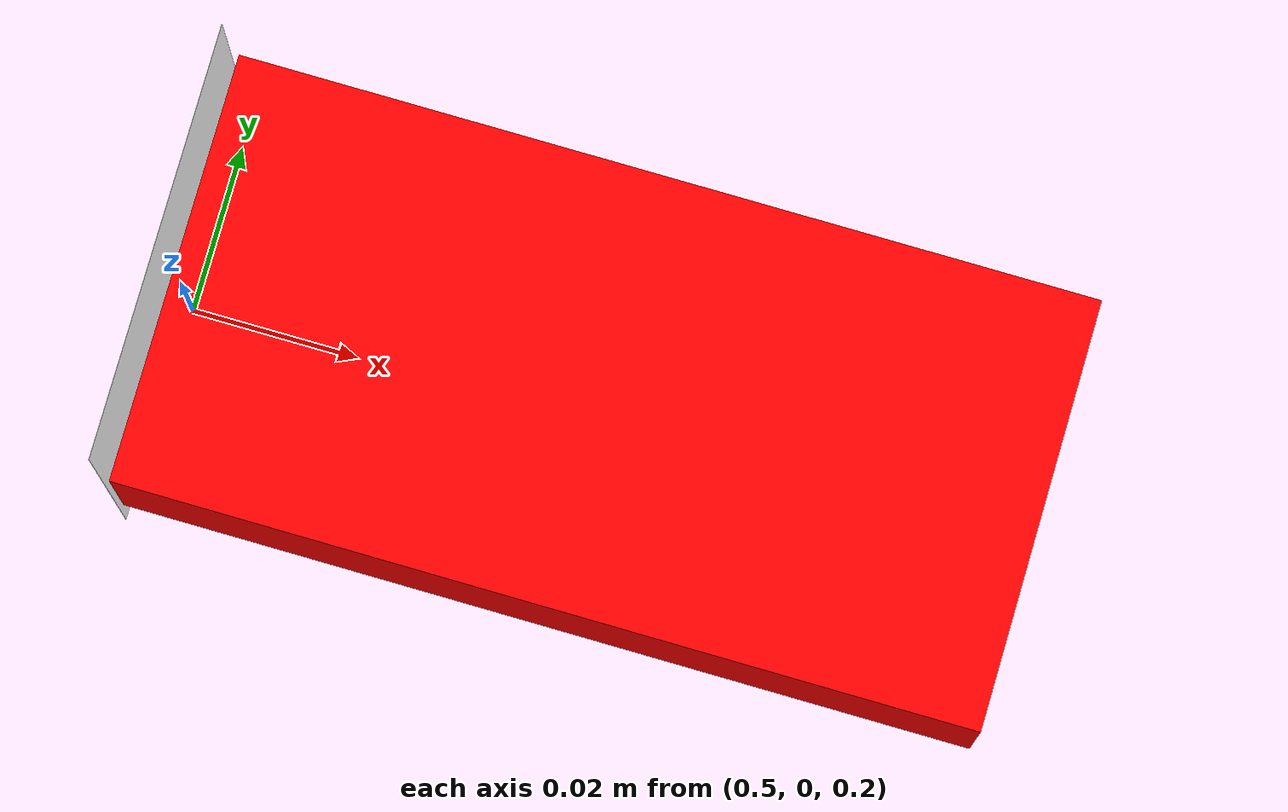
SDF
<?xml version="1.0"?>
<sdf version="1.8">
  <world name="battery_station">

    <plugin filename="ignition-gazebo-physics-system" name="ignition::gazebo::systems::Physics" />
    <plugin filename="ignition-gazebo-user-commands-system" name="ignition::gazebo::systems::UserCommands" />
    <plugin filename="ignition-gazebo-scene-broadcaster-system" name="ignition::gazebo::systems::SceneBroadcaster" />
    <plugin filename="ignition-gazebo-sensors-system" name="ignition::gazebo::systems::Sensors">
      <render_engine>ogre</render_engine>
    </plugin>

    <!-- Physics -->
    <physics name="physics" type="ode">
      <max_step_size>0.005</max_step_size>
      <real_time_factor>1.0</real_time_factor>
      <real_time_update_rate>200</real_time_update_rate>
    </physics>

    <!-- Scene -->
    <scene>
      <ambient>0.4 0.4 0.4 1</ambient>
      <background>0.7 0.7 0.7 1</background>
      <shadows>false</shadows>
    </scene>

    <gui fullscreen="0">
      <plugin filename="MinimalScene" name="3D View">
        <ignition-gui>
          <title>3D View</title>
          <property type="bool" key="showTitleBar">false</property>
          <property type="string" key="state">docked</property>
        </ignition-gui>
        <engine>ogre2</engine>
        <scene>scene</scene>
        <ambient_light>0.4 0.4 0.4</ambient_light>
        <background_color>0.8 0.8 0.8</background_color>
        <camera_pose>-2.2 -1.6 1.7 0.0 0.45 0.6</camera_pose>
      </plugin>

      <plugin filename="EntityContextMenuPlugin" name="Entity context menu">
        <ignition-gui>
          <property key="state" type="string">floating</property>
          <property key="width" type="double">5</property>
          <property key="height" type="double">5</property>
          <property key="showTitleBar" type="bool">false</property>
        </ignition-gui>
      </plugin>

      <plugin filename="GzSceneManager" name="Scene Manager">
        <ignition-gui>
          <property key="resizable" type="bool">false</property>
          <property key="width" type="double">5</property>
          <property key="height" type="double">5</property>
          <property key="state" type="string">floating</property>
          <property key="showTitleBar" type="bool">false</property>
        </ignition-gui>
      </plugin>

      <plugin filename="InteractiveViewControl" name="Interactive view control">
        <ignition-gui>
          <property key="resizable" type="bool">false</property>
          <property key="width" type="double">5</property>
          <property key="height" type="double">5</property>
          <property key="state" type="string">floating</property>
          <property key="showTitleBar" type="bool">false</property>
        </ignition-gui>
      </plugin>

      <plugin filename="CameraTracking" name="Camera Tracking">
        <ignition-gui>
          <property key="resizable" type="bool">false</property>
          <property key="width" type="double">5</property>
          <property key="height" type="double">5</property>
          <property key="state" type="string">floating</property>
          <property key="showTitleBar" type="bool">false</property>
        </ignition-gui>
      </plugin>

      <plugin filename="MarkerManager" name="Marker manager">
        <ignition-gui>
          <property key="resizable" type="bool">false</property>
          <property key="width" type="double">5</property>
          <property key="height" type="double">5</property>
          <property key="state" type="string">floating</property>
          <property key="showTitleBar" type="bool">false</property>
        </ignition-gui>
      </plugin>

      <plugin filename="SelectEntities" name="Select Entities">
        <ignition-gui>
          <property key="resizable" type="bool">false</property>
          <property key="width" type="double">5</property>
          <property key="height" type="double">5</property>
          <property key="state" type="string">floating</property>
          <property key="showTitleBar" type="bool">false</property>
        </ignition-gui>
      </plugin>

      <plugin filename="VisualizationCapabilities" name="Visualization Capabilities">
        <ignition-gui>
          <property key="resizable" type="bool">false</property>
          <property key="width" type="double">5</property>
          <property key="height" type="double">5</property>
          <property key="state" type="string">floating</property>
          <property key="showTitleBar" type="bool">false</property>
        </ignition-gui>
      </plugin>

      <plugin filename="WorldControl" name="World control">
        <ignition-gui>
          <title>World control</title>
          <property type="bool" key="showTitleBar">false</property>
          <property type="bool" key="resizable">false</property>
          <property type="double" key="height">72</property>
          <property type="double" key="width">121</property>
          <property type="double" key="z">1</property>
          <property type="string" key="state">floating</property>
          <anchors target="3D View">
            <line own="left" target="left"/>
            <line own="bottom" target="bottom"/>
          </anchors>
        </ignition-gui>
        <play_pause>true</play_pause>
        <step>true</step>
        <start_paused>false</start_paused>
        <use_event>true</use_event>
      </plugin>

      <plugin filename="WorldStats" name="World stats">
        <ignition-gui>
          <title>World stats</title>
          <property type="bool" key="showTitleBar">false</property>
          <property type="bool" key="resizable">false</property>
          <property type="double" key="height">110</property>
          <property type="double" key="width">290</property>
          <property type="double" key="z">1</property>
          <property type="string" key="state">floating</property>
          <anchors target="3D View">
            <line own="right" target="right"/>
            <line own="bottom" target="bottom"/>
          </anchors>
        </ignition-gui>
        <sim_time>true</sim_time>
        <real_time>true</real_time>
        <real_time_factor>true</real_time_factor>
        <iterations>true</iterations>
      </plugin>

      <plugin filename="ComponentInspector" name="Component inspector">
        <ignition-gui>
          <property type="string" key="state">docked</property>
        </ignition-gui>
      </plugin>

      <plugin filename="EntityTree" name="Entity tree">
        <ignition-gui>
          <property type="string" key="state">docked</property>
        </ignition-gui>
      </plugin>

      <plugin filename="ImageDisplay" name="EndEffector Camera">
        <ignition-gui>
          <title>End-Effector Camera</title>
          <property key="state" type="string">floating</property>
          <property type="double" key="width">360</property>
          <property type="double" key="height">300</property>
          <property type="double" key="x">20</property>
          <property type="double" key="y">20</property>
        </ignition-gui>
        <topic>/camera/image_raw</topic>
        <topic_picker>false</topic_picker>
      </plugin>
    </gui>

    <!-- Lighting -->
    <light type="directional" name="sun">
      <cast_shadows>true</cast_shadows>
      <pose>0 0 10 0 0 0</pose>
      <diffuse>0.8 0.8 0.8 1</diffuse>
      <specular>0.2 0.2 0.2 1</specular>
      <direction>-0.5 0.1 -0.9</direction>
      <attenuation>
        <range>1000</range>
      </attenuation>
    </light>

    <!-- Ground -->
    <model name="ground_plane">
      <static>true</static>
      <link name="ground_link">
        <collision name="ground_collision">
          <geometry>
            <plane>
              <normal>0 0 1</normal>
              <size>10 10</size>
            </plane>
          </geometry>
        </collision>
        <visual name="ground_visual">
          <geometry>
            <plane>
              <normal>0 0 1</normal>
              <size>10 10</size>
            </plane>
          </geometry>
          <material>
            <diffuse>0.5 0.5 0.5 1</diffuse>
          </material>
        </visual>
      </link>
    </model>

    <!-- Battery with AprilTag (simplified box model) -->
    <model name="battery_with_tag">
      <!-- Suspended at a reachable height for vision / grasp debugging without a workbench. -->
      <static>true</static>
      <pose>0.55 0 0.22 0 0 0</pose>
      <link name="battery_link">
        <inertial>
          <mass>0.5</mass>
          <inertia>
            <ixx>0.00012</ixx>
            <ixy>0</ixy>
            <ixz>0</ixz>
            <iyy>0.00043</iyy>
            <iyz>0</iyz>
            <izz>0.00052</izz>
          </inertia>
        </inertial>
        <collision name="battery_collision">
          <geometry>
            <box>
              <size>0.1 0.05 0.02</size>
            </box>
          </geometry>
        </collision>
        <visual name="battery_visual">
          <geometry>
            <box>
              <size>0.1 0.05 0.02</size>
            </box>
          </geometry>
          <material>
            <diffuse>1 0 0 1</diffuse>
          </material>
        </visual>
        <!-- AprilTag on the side face, oriented toward the robot base. -->
        <visual name="tag_visual">
          <pose>-0.051 0 0 0 -1.5708 0</pose>
          <geometry>
            <plane>
              <normal>0 0 1</normal>
              <size>0.05 0.05</size>
            </plane>
          </geometry>
          <material>
            <ambient>1 1 1 1</ambient>
            <diffuse>1 1 1 1</diffuse>
            <specular>0.1 0.1 0.1 1</specular>
            <pbr>
              <metal>
                <albedo_map>../materials/textures/tag36_11_00001.png</albedo_map>
              </metal>
            </pbr>
          </material>
        </visual>
      </link>
    </model>

  </world>
</sdf>
